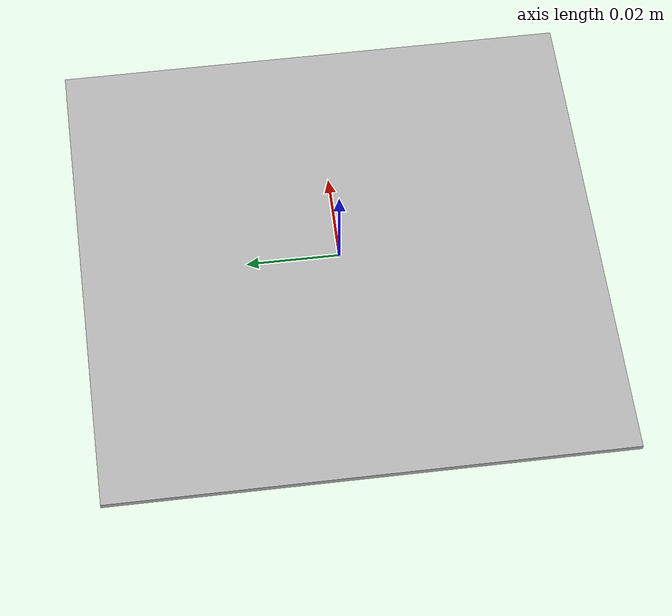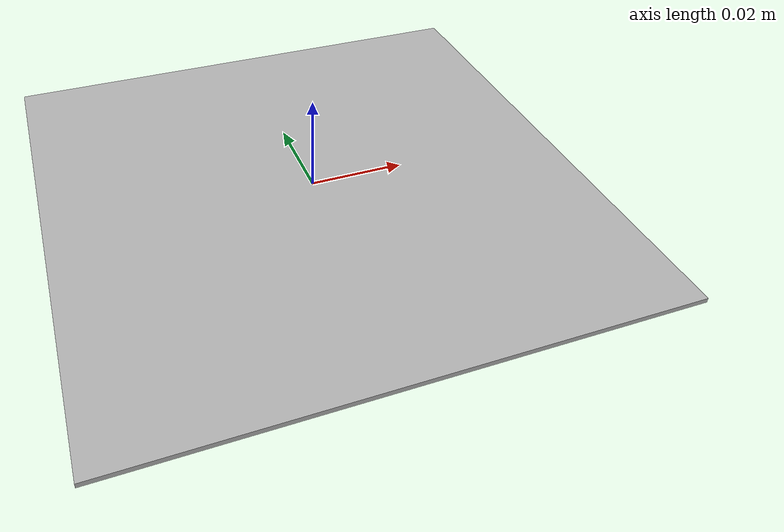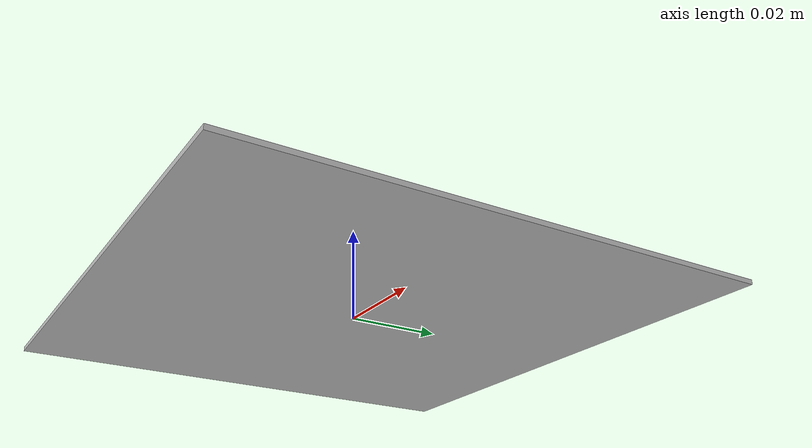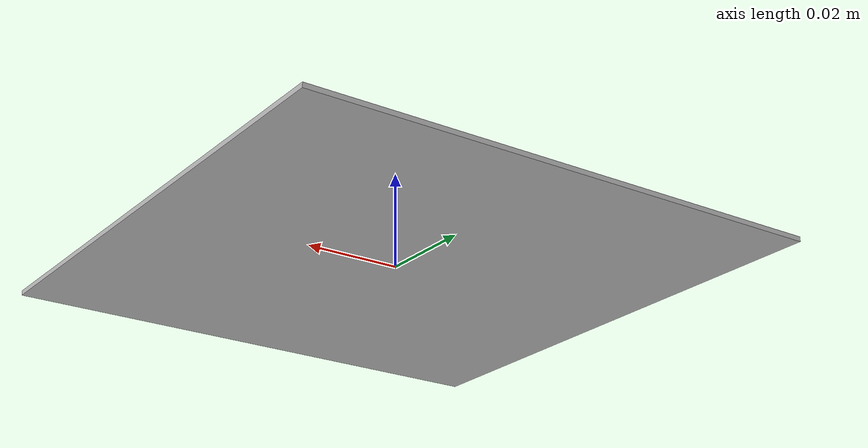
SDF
<?xml version='1.0'?>
<sdf version='1.6'>
  <model name='measure_gas_land_base'>
    <link name='link_2'>
      <inertial>
        <mass>10</mass>
        <inertia>
          <ixx>0.01</ixx>
          <ixy>0.01</ixy>
          <ixz>0.01</ixz>
          <iyy>0.01</iyy>
          <iyz>0.01</iyz>
          <izz>0.01</izz>
        </inertia>
      </inertial>
      <pose frame=''>0 0 0 0 -0 0</pose>
      <visual name='visual'>
        <pose frame=''>0 0 0 0 -0 0</pose>
        <geometry>
          <mesh>
            <uri>model://measure_gas_land_base/meshes/measure_gas_land_base.obj</uri>
            <scale>1 1 1</scale>
          </mesh>
        </geometry>
        <transparency>0</transparency>
        <cast_shadows>1</cast_shadows>
      </visual>
      <collision name='collision'>
        <laser_retro>0</laser_retro>
        <max_contacts>10</max_contacts>
        <pose frame=''>0 0 0 0 -0 0</pose>
        <geometry>
          <box>
            <size>0.11 0.11 0.02</size>
          </box>
        </geometry>
        <surface>
          <friction>
            <ode>
              <mu>100.1</mu>
              <mu2>100.1</mu2>
              <fdir1>0 0 0</fdir1>
              <slip1>0</slip1>
              <slip2>0</slip2>
            </ode>
            <torsional>
              <coefficient>1</coefficient>
              <patch_radius>0</patch_radius>
              <surface_radius>0</surface_radius>
              <use_patch_radius>1</use_patch_radius>
              <ode>
                <slip>0</slip>
              </ode>
            </torsional>
          </friction>
          <bounce>
            <restitution_coefficient>0</restitution_coefficient>
            <threshold>1e+06</threshold>
          </bounce>
          <contact>
            <collide_without_contact>0</collide_without_contact>
            <collide_without_contact_bitmask>1</collide_without_contact_bitmask>
            <collide_bitmask>1</collide_bitmask>
            <ode>
              <soft_cfm>0</soft_cfm>
              <soft_erp>0.2</soft_erp>
              <kp>1e+13</kp>
              <kd>1</kd>
              <max_vel>0.01</max_vel>
              <min_depth>0</min_depth>
            </ode>
            <bullet>
              <split_impulse>1</split_impulse>
              <split_impulse_penetration_threshold>-0.01</split_impulse_penetration_threshold>
              <soft_cfm>0</soft_cfm>
              <soft_erp>0.2</soft_erp>
              <kp>1e+13</kp>
              <kd>1</kd>
            </bullet>
          </contact>
        </surface>
      </collision>
    </link>
    <static>0</static>
    <allow_auto_disable>1</allow_auto_disable>
  </model>
</sdf>
